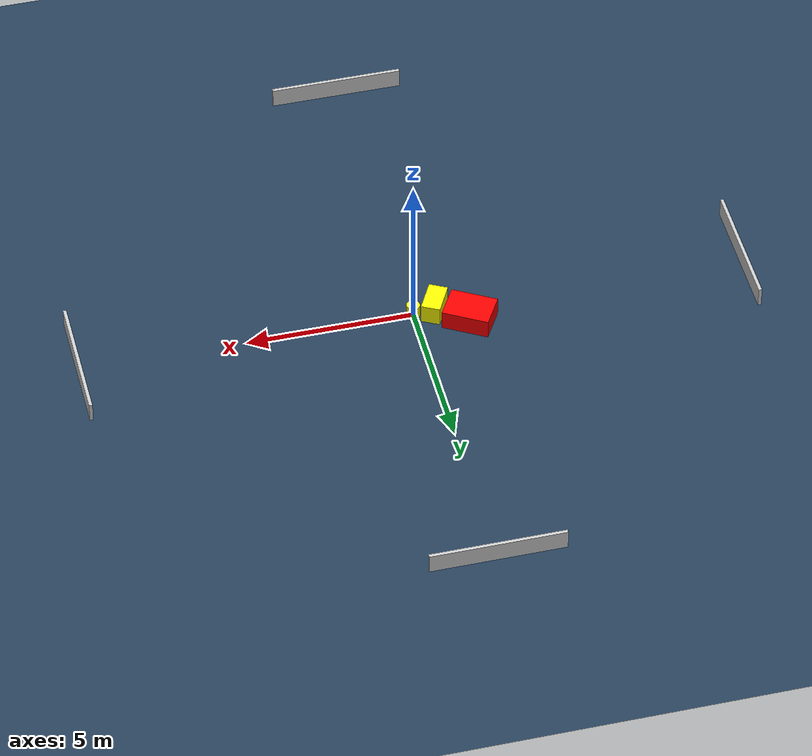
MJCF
<?xml version="1.0" ?>
<mujoco model="generated_environment">
  <option timestep="0.01" integrator="RK4" cone="elliptic"/>
  <default>
    <geom density="1"/>
  </default>
  <asset>
    <texture builtin="gradient" height="3072" name="skybox" rgb1="0.3 0.5 0.7" rgb2="0 0 0" type="skybox" width="512"/>
    <texture builtin="checker" height="300" name="groundplane" rgb1="0.2 0.3 0.4" rgb2="0.1 0.2 0.3" type="2d" width="300"/>
    <material name="groundplane" reflectance="0.2" texrepeat="5 5" texture="groundplane"/>
  </asset>
  <worldbody>
    <light dir="0 0 -1" directional="true" pos="0 0 1.5"/>
    <geom condim="3" friction="0.5 0.005 0.001" material="groundplane" name="floor" pos="0 0 0" size="0 0 0.05" type="plane"/>
    <body name="walls">
      <geom name="wall_1" condim="4" pos="-10.0 0.0 0.3" rgba="0.800000011920929 0.800000011920929 0.800000011920929 1.0" size="0.05 2.0 0.3" type="box"/>
      <geom name="wall_2" condim="4" pos="10.0 0.0 0.3" rgba="0.800000011920929 0.800000011920929 0.800000011920929 1.0" size="0.05 2.0 0.3" type="box"/>
      <geom name="wall_3" condim="4" pos="0.0 -10.0 0.3" rgba="0.800000011920929 0.800000011920929 0.800000011920929 1.0" size="2.0 0.05 0.3" type="box"/>
      <geom name="wall_4" condim="4" pos="0.0 10.0 0.3" rgba="0.800000011920929 0.800000011920929 0.800000011920929 1.0" size="2.0 0.05 0.3" type="box"/>
    </body>
    <body name="robot">
      <joint name="joint_x" type="slide" pos="0 0 0" axis="1 0 0"/>
      <joint name="joint_y" type="slide" pos="0 0 0" axis="0 1 0"/>
      <geom name="robot" type="cylinder" pos="0.0 0.0 0.2" size="0.2 0.2 0.0" mass="5.0" friction="1.0 0.005 0.0001" condim="4" rgba="1.0 1.0 0.0 1.0"/>
    </body>
    <body name="obstacle_1_movable">
      <geom name="obstacle_1_movable" condim="4" pos="-0.6378702363141205 0.01681006380676594 0.3" euler="0 0 242.13333812531508" friction="0.0 0.005 0.001" rgba="1.0 1.0 0.0 1.0" size="0.4871176207367029 0.2858299205804397 0.3" type="box" mass="0.1"/>
      <joint type="free"/>
    </body>
    <body name="obstacle_2_static">
      <geom name="obstacle_2_static" condim="4" pos="-1.5508724272584558 0.6245722546008282 0.3" euler="0 0 59.52034134749671" friction="0.0 0.005 0.001" rgba="1.0 0.0 0.0 1.0" size="0.5122233896090329 0.7057889038411631 0.3" type="box"/>
    </body>
  </worldbody>
  <actuator>
    <motor name="actuator_x" joint="joint_x" gear="1" ctrlrange="-1 1"/>
    <motor name="actuator_y" joint="joint_y" gear="1" ctrlrange="-1 1"/>
  </actuator>
</mujoco>
